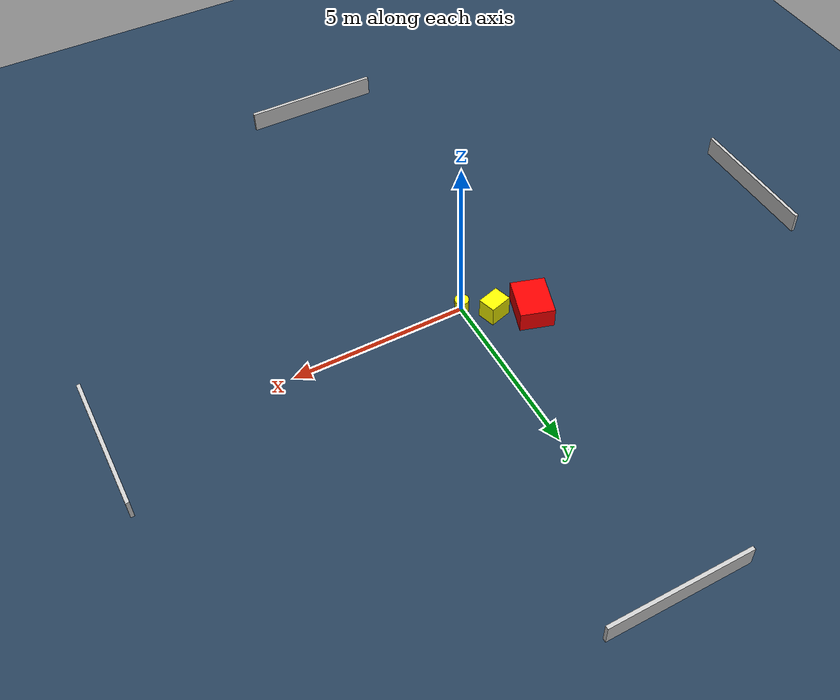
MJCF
<?xml version="1.0" ?>
<mujoco model="generated_environment">
  <option timestep="0.01" integrator="RK4" cone="elliptic"/>
  <default>
    <geom density="1"/>
  </default>
  <asset>
    <texture builtin="gradient" height="3072" name="skybox" rgb1="0.3 0.5 0.7" rgb2="0 0 0" type="skybox" width="512"/>
    <texture builtin="checker" height="300" name="groundplane" rgb1="0.2 0.3 0.4" rgb2="0.1 0.2 0.3" type="2d" width="300"/>
    <material name="groundplane" reflectance="0.2" texrepeat="5 5" texture="groundplane"/>
  </asset>
  <worldbody>
    <light dir="0 0 -1" directional="true" pos="0 0 1.5"/>
    <geom condim="3" friction="0.5 0.005 0.001" material="groundplane" name="floor" pos="0 0 0" size="0 0 0.05" type="plane"/>
    <body name="walls">
      <geom name="wall_1" condim="4" pos="-10.0 0.0 0.3" rgba="0.800000011920929 0.800000011920929 0.800000011920929 1.0" size="0.05 2.0 0.3" type="box"/>
      <geom name="wall_2" condim="4" pos="10.0 0.0 0.3" rgba="0.800000011920929 0.800000011920929 0.800000011920929 1.0" size="0.05 2.0 0.3" type="box"/>
      <geom name="wall_3" condim="4" pos="0.0 -10.0 0.3" rgba="0.800000011920929 0.800000011920929 0.800000011920929 1.0" size="2.0 0.05 0.3" type="box"/>
      <geom name="wall_4" condim="4" pos="0.0 10.0 0.3" rgba="0.800000011920929 0.800000011920929 0.800000011920929 1.0" size="2.0 0.05 0.3" type="box"/>
    </body>
    <body name="robot">
      <joint name="joint_x" type="slide" pos="0 0 0" axis="1 0 0"/>
      <joint name="joint_y" type="slide" pos="0 0 0" axis="0 1 0"/>
      <geom name="robot" type="cylinder" pos="0.0 0.0 0.2" size="0.2 0.2 0.0" mass="5.0" friction="1.0 0.005 0.0001" condim="4" rgba="1.0 1.0 0.0 1.0"/>
    </body>
    <body name="obstacle_1_movable">
      <geom name="obstacle_1_movable" condim="4" pos="-0.6933560715884126 0.5846093536456421 0.3" euler="0 0 106.49294040600144" friction="0.0 0.005 0.001" rgba="1.0 1.0 0.0 1.0" size="0.25766506505210107 0.32250151382237197 0.3" type="box" mass="0.1"/>
      <joint type="free"/>
    </body>
    <body name="obstacle_2_static">
      <geom name="obstacle_2_static" condim="4" pos="-1.6421905630733884 1.000666444812134 0.3" euler="0 0 252.55492804462614" friction="0.0 0.005 0.001" rgba="1.0 0.0 0.0 1.0" size="0.6166867367244815 0.4847506361654657 0.3" type="box"/>
    </body>
  </worldbody>
  <actuator>
    <motor name="actuator_x" joint="joint_x" gear="1" ctrlrange="-1 1"/>
    <motor name="actuator_y" joint="joint_y" gear="1" ctrlrange="-1 1"/>
  </actuator>
</mujoco>
